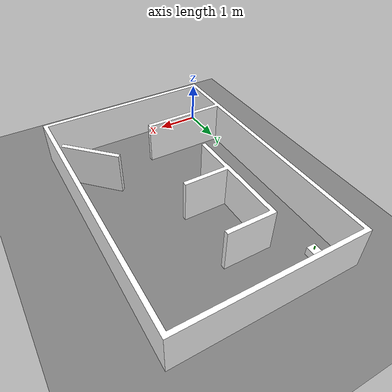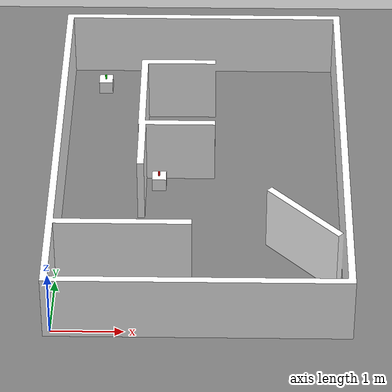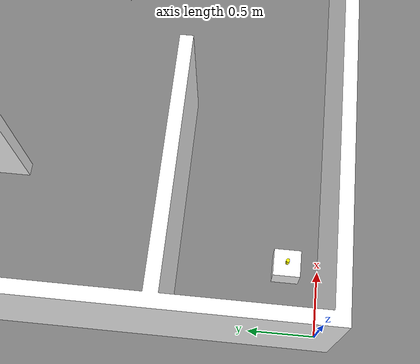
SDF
<?xml version="1.0"?>
<sdf version='1.10'>
  <world name='empty'>
    <physics name='1ms' type='ignored'>
      <max_step_size>0.001</max_step_size>
      <real_time_factor>1</real_time_factor>
      <real_time_update_rate>1000</real_time_update_rate>
    </physics>

    <!-- Core plugins -->
    <plugin name='gz::sim::systems::Physics' filename='gz-sim-physics-system'/>
    <plugin name='gz::sim::systems::UserCommands' filename='gz-sim-user-commands-system'/>
    <plugin name='gz::sim::systems::SceneBroadcaster' filename='gz-sim-scene-broadcaster-system'/>
    <plugin name='gz::sim::systems::Contact' filename='gz-sim-contact-system'/>
    <plugin name="gz::sim::systems::Sensors" filename="gz-sim-sensors-system">
      <render_engine>ogre2</render_engine>
    </plugin>
    <plugin name="gz::sim::systems::Imu" filename="gz-sim-imu-system"/>

    <gravity>0 0 -9.8</gravity>
    <magnetic_field>5.5645e-06 2.28758e-05 -4.23884e-05</magnetic_field>
    <atmosphere type='adiabatic'/>
    <scene>
      <ambient>0.4 0.4 0.4 1</ambient>
      <background>0.7 0.7 0.7 1</background>
      <shadows>true</shadows>
    </scene>

    <!-- Ground plane: white -->
    <model name='ground_plane'>
      <static>true</static>
      <link name='link'>
        <collision name='collision'>
          <geometry>
            <plane>
              <normal>0 0 1</normal>
              <size>100 100</size>
            </plane>
          </geometry>
        </collision>
        <visual name='visual'>
          <geometry>
            <plane>
              <normal>0 0 1</normal>
              <size>100 100</size>
            </plane>
          </geometry>
          <material>
            <ambient>0.5 0.5 0.5 1</ambient>
            <diffuse>0.5 0.5 0.5 1</diffuse>
          </material>
        </visual>
      </link>
    </model>

    <!-- Boundary mesh: black -->
    <model name='outer_boundary'>
      <link name='link'>
        <visual name='visual'>
          <geometry>
            <mesh>
              <uri>file:///home/student14/Team9_repository/Workspaces/nav_ws/src/config/example_search_area.stl</uri>
              <scale>0.001 0.001 0.001</scale>
            </mesh>
          </geometry>
          <material>
            <ambient>1 1 1 1</ambient>
            <diffuse>1 1 1 1</diffuse>
          </material>
        </visual>
        <collision name='collision'>
          <geometry>
            <mesh>
              <uri>file:///home/student14/Team9_repository/Workspaces/nav_ws/src/config/example_search_area.stl</uri>
              <scale>0.01 0.01 0.01</scale>
            </mesh>
          </geometry>
        </collision>
      </link>
      <static>true</static>
    </model>

    <!-- Target object 1 -->
    <model name='obj_box'>
      <pose>0.5 0.25 0.103 0 0 0</pose>
      <link name='obj_box_link'>
        <collision name='obj_box_collision'>
          <geometry><box><size>0.205 0.205 0.205</size></box></geometry>
        </collision>
        <visual name='obj_box_visual'>
          <geometry><box><size>0.205 0.205 0.205</size></box></geometry>
          <material><ambient>1 1 1 1</ambient><diffuse>1 1 1 1</diffuse></material>
        </visual>
      </link>
      <static>true</static>
    </model>

    <model name='target_cylinder_1'>
      <pose>0.5 0.25 0.239 0 0 0</pose>
      <link name='target_cylinder_1_link'>
        <inertial>
          <mass>0.02</mass>
          <inertia><ixx>8e-06</ixx><iyy>8e-06</iyy><izz>1.8e-06</izz><ixy>0</ixy><ixz>0</ixz><iyz>0</iyz></inertia>
        </inertial>
        <collision name='target_cylinder_1_collision'>
          <geometry><cylinder><radius>0.0134</radius><length>0.067</length></cylinder></geometry>
        </collision>
        <visual name='target_cylinder_1_visual'>
          <geometry><cylinder><radius>0.0134</radius><length>0.067</length></cylinder></geometry>
          <material><ambient>1 1 0 1</ambient><diffuse>1 1 0 1</diffuse></material>
        </visual>
      </link>
      <static>false</static>
    </model>

    <!-- Target object 2 -->
    <model name='obj_2_box'>
      <pose>0.5 5.5 0.103 0 0 0</pose>
      <link name='obj_box_2_link'>
        <collision name='obj_box_2_collision'>
          <geometry><box><size>0.205 0.205 0.205</size></box></geometry>
        </collision>
        <visual name='obj_box_2_visual'>
          <geometry><box><size>0.205 0.205 0.205</size></box></geometry>
          <material><ambient>1 1 1 1</ambient><diffuse>1 1 1 1</diffuse></material>
        </visual>
      </link>
      <static>true</static>
    </model>

    <model name='target_cylinder_2'>
      <pose>0.5 5.5 0.239 0 0 0</pose>
      <link name='target_cylinder_2_link'>
        <inertial>
          <mass>0.02</mass>
          <inertia><ixx>8e-06</ixx><iyy>8e-06</iyy><izz>1.8e-06</izz><ixy>0</ixy><ixz>0</ixz><iyz>0</iyz></inertia>
        </inertial>
        <collision name='target_cylinder_2_collision'>
          <geometry><cylinder><radius>0.0134</radius><length>0.067</length></cylinder></geometry>
        </collision>
        <visual name='target_cylinder_2_visual'>
          <geometry><cylinder><radius>0.0134</radius><length>0.067</length></cylinder></geometry>
          <material><ambient>0 1 0 1</ambient><diffuse>0 1 0 1</diffuse></material>
        </visual>
      </link>
      <static>false</static>
    </model>

    <!-- Target object 3 -->
    <model name='obj_3_box'>
      <pose>1.3899 3.1221 0.103 0 0 0</pose>
      <link name='obj_box_3_link'>
        <collision name='obj_box_3_collision'>
          <geometry><box><size>0.205 0.205 0.205</size></box></geometry>
        </collision>
        <visual name='obj_box_3_visual'>
          <geometry><box><size>0.205 0.205 0.205</size></box></geometry>
          <material><ambient>1 1 1 1</ambient><diffuse>1 1 1 1</diffuse></material>
        </visual>
      </link>
      <static>true</static>
    </model>

    <model name='target_cylinder_3'>
      <pose>1.3899 3.1221 0.239 0 0 0</pose>
      <link name='target_cylinder_3_link'>
        <inertial>
          <mass>0.02</mass>
          <inertia><ixx>8e-06</ixx><iyy>8e-06</iyy><izz>1.8e-06</izz><ixy>0</ixy><ixz>0</ixz><iyz>0</iyz></inertia>
        </inertial>
        <collision name='target_cylinder_3_collision'>
          <geometry><cylinder><radius>0.0134</radius><length>0.067</length></cylinder></geometry>
        </collision>
        <visual name='target_cylinder_3_visual'>
          <geometry><cylinder><radius>0.0134</radius><length>0.067</length></cylinder></geometry>
          <material><ambient>1 0 0 1</ambient><diffuse>1 0 0 1</diffuse></material>
        </visual>
      </link>
      <static>false</static>
    </model>

    <model name="overhead_tracking_camera">
      <static>true</static>

      <link name="camera_link">
        <!-- Position: center of 6x7 area, above -->
        <!-- Rotation: looking straight down -->
        <pose>2.0 3.0 6 0 1.5708 0</pose>

        <sensor name="overhead_camera" type="camera">
          <update_rate>30</update_rate>

          <camera>
            <horizontal_fov>1.2</horizontal_fov> <!-- ~69 deg -->

            <image>
              <width>1024</width>
              <height>768</height>
              <format>R8G8B8</format>
            </image>

            <clip>
              <near>0.1</near>
              <far>50</far>
            </clip>
          </camera>

          <!-- Use correct plugin for gz sim -->
          <plugin name="overhead_camera_controller" filename="libgz_ros2_camera.so">
            <ros>
              <namespace>/overhead_camera</namespace>
            </ros>
          </plugin>

        </sensor>
      </link>
    </model>

<!-- 5x4 point light grid -->
<light name='light_1' type='point'>
  <pose>0 0 3 0 0 0</pose>
  <diffuse>0.5 0.5 0.5 1</diffuse>
  <specular>0.05 0.05 0.05 1</specular>
  <attenuation>
    <range>10</range>
    <constant>0.8</constant>
    <linear>0.2</linear>
    <quadratic>0.05</quadratic>
  </attenuation>
  <cast_shadows>false</cast_shadows>
</light>

<light name='light_2' type='point'>
  <pose>1.75 0 3 0 0 0</pose>
  <diffuse>0.5 0.5 0.5 1</diffuse>
  <specular>0.05 0.05 0.05 1</specular>
  <attenuation>
    <range>10</range>
    <constant>0.8</constant>
    <linear>0.2</linear>
    <quadratic>0.05</quadratic>
  </attenuation>
  <cast_shadows>false</cast_shadows>
</light>

<light name='light_3' type='point'>
  <pose>3.5 0 3 0 0 0</pose>
  <diffuse>0.5 0.5 0.5 1</diffuse>
  <specular>0.05 0.05 0.05 1</specular>
  <attenuation>
    <range>10</range>
    <constant>0.8</constant>
    <linear>0.2</linear>
    <quadratic>0.05</quadratic>
  </attenuation>
  <cast_shadows>false</cast_shadows>
</light>

<light name='light_4' type='point'>
  <pose>5.25 0 3 0 0 0</pose>
  <diffuse>0.5 0.5 0.5 1</diffuse>
  <specular>0.05 0.05 0.05 1</specular>
  <attenuation>
    <range>10</range>
    <constant>0.8</constant>
    <linear>0.2</linear>
    <quadratic>0.05</quadratic>
  </attenuation>
  <cast_shadows>false</cast_shadows>
</light>

<light name='light_5' type='point'>
  <pose>7 0 3 0 0 0</pose>
  <diffuse>0.5 0.5 0.5 1</diffuse>
  <specular>0.05 0.05 0.05 1</specular>
  <attenuation>
    <range>10</range>
    <constant>0.8</constant>
    <linear>0.2</linear>
    <quadratic>0.05</quadratic>
  </attenuation>
  <cast_shadows>false</cast_shadows>
</light>

<!-- Row 2 -->
<light name='light_6' type='point'>
  <pose>0 1.75 3 0 0 0</pose>
  <diffuse>0.5 0.5 0.5 1</diffuse>
  <specular>0.05 0.05 0.05 1</specular>
  <attenuation>
    <range>10</range>
    <constant>0.8</constant>
    <linear>0.2</linear>
    <quadratic>0.05</quadratic>
  </attenuation>
  <cast_shadows>false</cast_shadows>
</light>

<light name='light_7' type='point'>
  <pose>1.75 1.75 3 0 0 0</pose>
  <diffuse>0.5 0.5 0.5 1</diffuse>
  <specular>0.05 0.05 0.05 1</specular>
  <attenuation>
    <range>10</range>
    <constant>0.8</constant>
    <linear>0.2</linear>
    <quadratic>0.05</quadratic>
  </attenuation>
  <cast_shadows>false</cast_shadows>
</light>

<light name='light_8' type='point'>
  <pose>3.5 1.75 3 0 0 0</pose>
  <diffuse>0.5 0.5 0.5 1</diffuse>
  <specular>0.05 0.05 0.05 1</specular>
  <attenuation>
    <range>10</range>
    <constant>0.8</constant>
    <linear>0.2</linear>
    <quadratic>0.05</quadratic>
  </attenuation>
  <cast_shadows>false</cast_shadows>
</light>

<light name='light_9' type='point'>
  <pose>5.25 1.75 3 0 0 0</pose>
  <diffuse>0.5 0.5 0.5 1</diffuse>
  <specular>0.05 0.05 0.05 1</specular>
  <attenuation>
    <range>10</range>
    <constant>0.8</constant>
    <linear>0.2</linear>
    <quadratic>0.05</quadratic>
  </attenuation>
  <cast_shadows>false</cast_shadows>
</light>

<light name='light_10' type='point'>
  <pose>7 1.75 3 0 0 0</pose>
  <diffuse>0.5 0.5 0.5 1</diffuse>
  <specular>0.05 0.05 0.05 1</specular>
  <attenuation>
    <range>10</range>
    <constant>0.8</constant>
    <linear>0.2</linear>
    <quadratic>0.05</quadratic>
  </attenuation>
  <cast_shadows>false</cast_shadows>
</light>

<!-- Row 3 -->
<light name='light_11' type='point'>
  <pose>0 3.5 3 0 0 0</pose>
  <diffuse>0.5 0.5 0.5 1</diffuse>
  <specular>0.05 0.05 0.05 1</specular>
  <attenuation>
    <range>10</range>
    <constant>0.8</constant>
    <linear>0.2</linear>
    <quadratic>0.05</quadratic>
  </attenuation>
  <cast_shadows>false</cast_shadows>
</light>

<light name='light_12' type='point'>
  <pose>1.75 3.5 3 0 0 0</pose>
  <diffuse>0.5 0.5 0.5 1</diffuse>
  <specular>0.05 0.05 0.05 1</specular>
  <attenuation>
    <range>10</range>
    <constant>0.8</constant>
    <linear>0.2</linear>
    <quadratic>0.05</quadratic>
  </attenuation>
  <cast_shadows>false</cast_shadows>
</light>

<light name='light_13' type='point'>
  <pose>3.5 3.5 3 0 0 0</pose>
  <diffuse>0.5 0.5 0.5 1</diffuse>
  <specular>0.05 0.05 0.05 1</specular>
  <attenuation>
    <range>10</range>
    <constant>0.8</constant>
    <linear>0.2</linear>
    <quadratic>0.05</quadratic>
  </attenuation>
  <cast_shadows>false</cast_shadows>
</light>

<light name='light_14' type='point'>
  <pose>5.25 3.5 3 0 0 0</pose>
  <diffuse>0.5 0.5 0.5 1</diffuse>
  <specular>0.05 0.05 0.05 1</specular>
  <attenuation>
    <range>10</range>
    <constant>0.8</constant>
    <linear>0.2</linear>
    <quadratic>0.05</quadratic>
  </attenuation>
  <cast_shadows>false</cast_shadows>
</light>

<light name='light_15' type='point'>
  <pose>7 3.5 3 0 0 0</pose>
  <diffuse>0.5 0.5 0.5 1</diffuse>
  <specular>0.05 0.05 0.05 1</specular>
  <attenuation>
    <range>10</range>
    <constant>0.8</constant>
    <linear>0.2</linear>
    <quadratic>0.05</quadratic>
  </attenuation>
  <cast_shadows>false</cast_shadows>
</light>

<!-- Row 4 -->
<light name='light_16' type='point'>
  <pose>0 5.25 3 0 0 0</pose>
  <diffuse>0.5 0.5 0.5 1</diffuse>
  <specular>0.05 0.05 0.05 1</specular>
  <attenuation>
    <range>10</range>
    <constant>0.8</constant>
    <linear>0.2</linear>
    <quadratic>0.05</quadratic>
  </attenuation>
  <cast_shadows>false</cast_shadows>
</light>

<light name='light_17' type='point'>
  <pose>1.75 5.25 3 0 0 0</pose>
  <diffuse>0.5 0.5 0.5 1</diffuse>
  <specular>0.05 0.05 0.05 1</specular>
  <attenuation>
    <range>10</range>
    <constant>0.8</constant>
    <linear>0.2</linear>
    <quadratic>0.05</quadratic>
  </attenuation>
  <cast_shadows>false</cast_shadows>
</light>

<light name='light_18' type='point'>
  <pose>3.5 5.25 3 0 0 0</pose>
  <diffuse>0.5 0.5 0.5 1</diffuse>
  <specular>0.05 0.05 0.05 1</specular>
  <attenuation>
    <range>10</range>
    <constant>0.8</constant>
    <linear>0.2</linear>
    <quadratic>0.05</quadratic>
  </attenuation>
  <cast_shadows>false</cast_shadows>
</light>

<light name='light_19' type='point'>
  <pose>5.25 5.25 3 0 0 0</pose>
  <diffuse>0.5 0.5 0.5 1</diffuse>
  <specular>0.05 0.05 0.05 1</specular>
  <attenuation>
    <range>10</range>
    <constant>0.8</constant>
    <linear>0.2</linear>
    <quadratic>0.05</quadratic>
  </attenuation>
  <cast_shadows>false</cast_shadows>
</light>

<light name='light_20' type='point'>
  <pose>7 5.25 3 0 0 0</pose>
  <diffuse>0.5 0.5 0.5 1</diffuse>
  <specular>0.05 0.05 0.05 1</specular>
  <attenuation>
    <range>10</range>
    <constant>0.8</constant>
    <linear>0.2</linear>
    <quadratic>0.05</quadratic>
  </attenuation>
  <cast_shadows>false</cast_shadows>
</light>

  </world>
</sdf>
